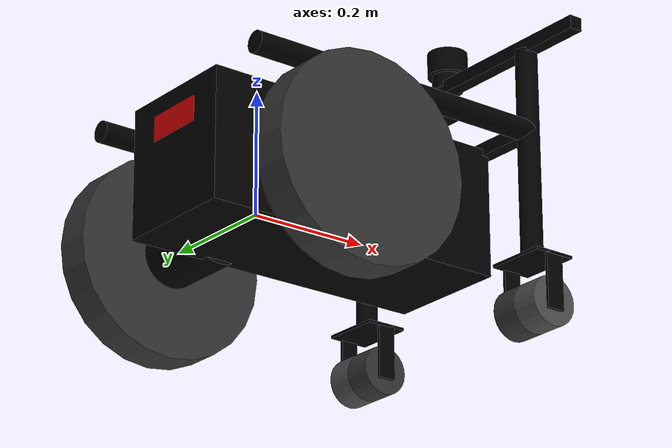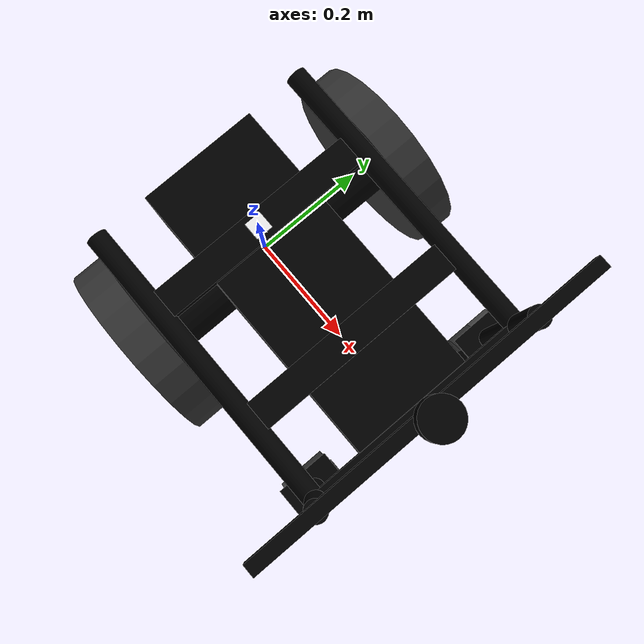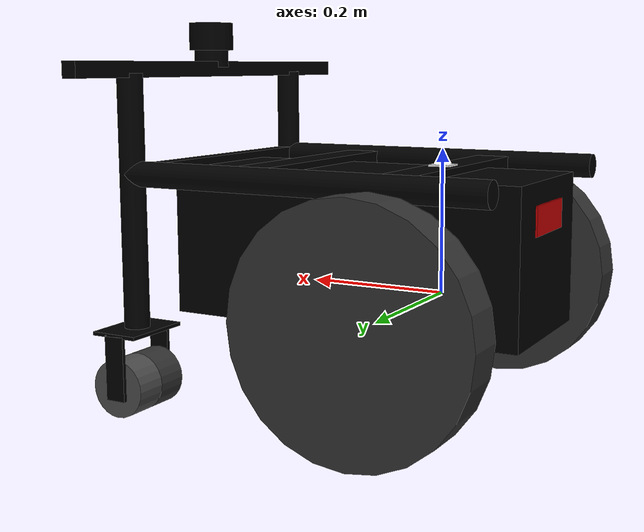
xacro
<?xml version="1.0"?>
<robot name="industrial_robot" xmlns:xacro="http://ros.org/wiki/xacro">

  <!-- Import all robot parts which were xacroed -->
  <xacro:include filename="$(find nitrabot_description)/urdf/industrial_robot.xacro" />
  <!-- Import Rviz colors -->
  <xacro:include filename="$(find nitrabot_description)/urdf/colors.xacro" />
  <!-- Import robot properties -->
  <xacro:include filename="$(find nitrabot_description)/urdf/properties.xacro" />
  <!-- Import sensor and actuator properties -->
  <xacro:include filename="$(find nitrabot_description)/urdf/sensors_and_actuators.xacro" />
  <xacro:arg name="robot_namespace" default="/" />

  <link name="base_link">
    <visual>
      <geometry>
        <box size="0.01 0.01 0.01"/>
      </geometry>
      <material name="Black"/>
    </visual>
    <collision>
      <geometry>
        <box size="1.24 0.74 0.46"/>	<!-- rough robot size: x=1.24 y=0.74 z=0.46 -->
      </geometry>
      <origin rpy="0 0 0" xyz="0.395 0.0 0.12"/>
    </collision>
  </link>
  <gazebo reference="base_link">
    <material>Gazebo/Black</material>
  </gazebo>

  <link name="base">
    <visual>
      <geometry>
        <box size="0.52 0.21 0.21"/>
      </geometry>
      <material name="Black"/>
    </visual>
    <xacro:inertial_box mass="${base_mass}" x="0.52" y="0.21" z="0.21" />
  </link>
  <gazebo reference="base">
    <material>Gazebo/Black</material>
  </gazebo>
  <joint name="base_link_to_base" type="fixed">
    <parent link="base_link"/>
    <child link="base"/>
    <origin xyz="0.11 0.0 0.061" />
  </joint>

  <link name="robot_center">
    <visual>
      <geometry>
        <box size="0.01 0.01 0.01" />
      </geometry>
      <material name="Red"/>
    </visual>
  </link>
  <gazebo reference="robot_center">
    <material>Gazebo/Red</material>
  </gazebo>
  <joint name="base_link_to_robot_center" type="fixed">
    <parent link="base_link"/>
    <child link="robot_center"/>
    <origin xyz="0.415 0.0 0.0" />
  </joint>

  <!-- ////////////////////////// Base Link and Wheel Connections and Links ////////////////////////// -->

  <xacro:default_box parent="base" child_name="back_base_support_frame" mass="${base_support_frame_mass}" sizex="0.05" sizey="0.40" sizez="0.02" ox="-0.11" oy="0.0" oz="0.105" yaw="0.0" pitch="0.0" roll="0.0" color="Black" />
  <xacro:default_box parent="base" child_name="front_base_support_frame" mass="${base_support_frame_mass}" sizex="0.05" sizey="0.40" sizez="0.02" ox="0.11" oy="0.0" oz="0.105" yaw="0.0" pitch="0.0" roll="0.0" color="Black" />

  <xacro:default_zylinder_in_X parent="back_base_support_frame" child_name="zylinder_base_support_left" mass="${zylinder_base_support_mass}" length="0.52" radius="0.0175" ox="0.11" oy="0.2" oz="0.0" yaw="0.0" pitch="${pi/2}" roll="0.0" color="Black" />
  <xacro:default_zylinder_in_X parent="back_base_support_frame" child_name="zylinder_base_support_right" mass="${zylinder_base_support_mass}" length="0.52" radius="0.0175" ox="0.11" oy="-0.2" oz="0.0" yaw="0.0" pitch="${pi/2}" roll="0.0" color="Black" />

  <xacro:default_box parent="base" child_name="support_link" mass="${support_link_mass}" sizex="0.022" sizey="0.4" sizez="0.022" ox="0.26" oy="0.0" oz="0.105" yaw="0.0" pitch="0.0" roll="0.0" color="Black" />

  <xacro:default_zylinder_in_Y parent="base" child_name="wheel_support_left" mass="${wheel_support_mass}" length="0.13" radius="0.05" ox="-0.11" oy="0.155" oz="-0.061" roll="${pi/2}" yaw="0.0" pitch="0.0" color="Black" />
  <xacro:default_zylinder_in_Y parent="base" child_name="wheel_support_right" mass="${wheel_support_mass}" length="0.13" radius="0.05" ox="-0.11" oy="-0.155" oz="-0.061" roll="${pi/2}" yaw="0.0" pitch="0.0" color="Black" />

  <xacro:default_zylinder_in_Z parent="top_support" child_name="lidar_base" mass="${lidar_base_mass}" length="0.025" radius="0.025" ox="0.01" oy="0.0" oz="0.015" roll="0.0" yaw="0.0" pitch="0.0" color="Black" />

  <xacro:default_box parent="base" child_name="back_light" mass="${back_light_mass}" sizex="0.005" sizey="0.1" sizez="0.04" ox="-0.26" oy="0.0" oz="0.055" yaw="0.0" pitch="0.0" roll="0.0" color="Red" />

  <!-- ////////////////////////// Outer frame with Links and Plates ////////////////////////// -->

  <xacro:default_box parent="base" child_name="top_support" mass="${top_support_mass}" sizex="0.022" sizey="0.63" sizez="0.022" ox="0.26" oy="0.0" oz="0.245" yaw="0.0" pitch="0.0" roll="0.0" color="Black" />

  <!-- ////////////////////////// Dust Box ////////////////////////// -->

  <!-- ////////////////////////// Brush ////////////////////////// -->

  <!-- ////////////////////////// Omnidirectional Wheels ////////////////////////// -->

  <xacro:default_zylinder_in_Z parent="zylinder_base_support_left" child_name="zylinder_to_castor_left" mass="${zylinder_to_castor_mass}" length="0.35" radius="0.0175" ox="0.26" oy="0.0" oz="-0.04" yaw="0.0" pitch="0.0" roll="0.0" color="Black" />
  <xacro:default_zylinder_in_Z parent="zylinder_base_support_right" child_name="zylinder_to_castor_right" mass="${zylinder_to_castor_mass}" length="0.35" radius="0.0175" ox="0.26" oy="0.0" oz="-0.04" yaw="0.0" pitch="0.0" roll="0.0" color="Black" />

  <xacro:default_box parent="zylinder_to_castor_left" child_name="castor_plate_left" mass="${castor_plate_mass}" sizex="0.07" sizey="0.10" sizez="0.005" ox="0.0" oy="0.0" oz="-0.175" yaw="0.0" pitch="0.0" roll="0.0" color="Black" />
  <xacro:default_box parent="zylinder_to_castor_right" child_name="castor_plate_right" mass="${castor_plate_mass}" sizex="0.07" sizey="0.10" sizez="0.005" ox="0.0" oy="0.0" oz="-0.175" yaw="0.0" pitch="0.0" roll="0.0" color="Black" />

  <xacro:default_box parent="castor_plate_left" child_name="castor_support_leftleft" mass="${castor_support_mass}" sizex="0.03" sizey="0.005" sizez="0.09" ox="0.0" oy="0.0475" oz="-0.045" yaw="0.0" pitch="0.0" roll="0.0" color="Black" />
  <xacro:default_box parent="castor_plate_left" child_name="castor_support_rightleft" mass="${castor_support_mass}" sizex="0.03" sizey="0.005" sizez="0.09" ox="0.0" oy="-0.0475" oz="-0.045" yaw="0.0" pitch="0.0" roll="0.0" color="Black" />
  <xacro:default_box parent="castor_plate_right" child_name="castor_support_leftright" mass="${castor_support_mass}" sizex="0.03" sizey="0.005" sizez="0.09" ox="0.0" oy="0.0475" oz="-0.045" yaw="0.0" pitch="0.0" roll="0.0" color="Black" />
  <xacro:default_box parent="castor_plate_right" child_name="castor_support_rightright" mass="${castor_support_mass}" sizex="0.03" sizey="0.005" sizez="0.09" ox="0.0" oy="-0.0475" oz="-0.045" yaw="0.0" pitch="0.0" roll="0.0" color="Black" />

  <xacro:default_zylinder_in_Y_with_collision parent="castor_plate_left" child_name="castor_leftleft" mass="${castor_mass}" length="0.045" radius="0.04" ox="0.0" oy="0.0225" oz="-0.075" roll="${pi/2}" yaw="0.0" pitch="0.0" color="DarkGrey" />
  <xacro:default_zylinder_in_Y_with_collision parent="castor_plate_left" child_name="castor_rightleft" mass="${castor_mass}" length="0.045" radius="0.04" ox="0.0" oy="-0.0225" oz="-0.075" roll="${pi/2}" yaw="0.0" pitch="0.0" color="Grey" />
  <xacro:default_zylinder_in_Y_with_collision parent="castor_plate_right" child_name="castor_leftright" mass="${castor_mass}" length="0.045" radius="0.04" ox="0.0" oy="0.0225" oz="-0.075" roll="${pi/2}" yaw="0.0" pitch="0.0" color="Grey" />
  <xacro:default_zylinder_in_Y_with_collision parent="castor_plate_right" child_name="castor_rightright" mass="${castor_mass}" length="0.045" radius="0.04" ox="0.0" oy="-0.0225" oz="-0.075" roll="${pi/2}" yaw="0.0" pitch="0.0" color="DarkGrey" />

  <!-- ////////////////////////// Frame for Sonic Sensors ////////////////////////// -->

  <!-- ////////////////////////// Actuators and Sensors ////////////////////////// -->

  <xacro:wheel_actuator parent="wheel_support_left" child_name="wheel_left" mass="${wheel_mass}" length="0.06" radius="${wheel_radius}" ox="0.0" oy="0.095" oz="0.0" roll="${pi/2}" yaw="0.0" pitch="0.0" color="Grey" axis_x="0" axis_y="1" axis_z="0" mu1="${mu1}" mu2="${mu2}" kp="${kp}" kd="${kd}" />
  <xacro:wheel_actuator parent="wheel_support_right" child_name="wheel_right" mass="${wheel_mass}" length="0.06" radius="${wheel_radius}" ox="0.0" oy="-0.095" oz="0.0" roll="${pi/2}" yaw="0.0" pitch="0.0" color="Grey" axis_x="0" axis_y="1" axis_z="0" mu1="${mu1}" mu2="${mu2}" kp="${kp}" kd="${kd}" />

  <xacro:lidar_sensor parent="lidar_base" lidar_name="laser" length="${lidar_length}" radius="${lidar_radius}" mass="${lidar_mass}" ox="0.0" oy="0.0" oz="0.0325" update_rate="${lidar_update_rate}" min_angle="${lidar_min_angle}" max_angle="${lidar_max_angle}" min_range="${lidar_min_range}" max_range="${lidar_max_range}" range_resolution="${lidar_range_resolution}" stdv="${lidar_stdv}" />

  <xacro:imu_sensor parent="back_base_support_frame" imu_name="imu_sensor" mass="${imu_mass}" sizex="0.03" sizey="0.03" sizez="0.005" ox="0.0" oy="0.0" oz="0.01" update_rate="${imu_update_rate}" update_rateHz="${imu_update_rateHz}" noise="${imu_noise}" />

 <gazebo>
    <plugin name="gazebo_ros_control" filename="libgazebo_ros_control.so">
      <robotNamespace>$(arg robot_namespace)</robotNamespace>
      <legacyModeNS>true</legacyModeNS>
    </plugin>
  </gazebo>

  <gazebo>
    <plugin name="imu_controller" filename="libhector_gazebo_ros_imu.so">
      <robotNamespace>$(arg robot_namespace)</robotNamespace>
      <updateRate>50.0</updateRate>
      <bodyName>base_link</bodyName>
      <topicName>imu/data</topicName>
      <accelDrift>0.005 0.005 0.005</accelDrift>
      <accelGaussianNoise>0.005 0.005 0.005</accelGaussianNoise>
      <rateDrift>0.005 0.005 0.005 </rateDrift>
      <rateGaussianNoise>0.005 0.005 0.005 </rateGaussianNoise>
      <headingDrift>0.005</headingDrift>
      <headingGaussianNoise>0.005</headingGaussianNoise>
    </plugin>
  </gazebo>

  <gazebo>
    <plugin name="gps_controller" filename="libhector_gazebo_ros_gps.so">
      <robotNamespace>$(arg robot_namespace)</robotNamespace>
      <updateRate>40</updateRate>
      <bodyName>base_link</bodyName>
      <frameId>map</frameId>
      <topicName>navsat/fix</topicName>
      <velocityTopicName>navsat/vel</velocityTopicName>
      <referenceLatitude>34.835190564394</referenceLatitude>
      <referenceLongitude>137.45711512765206</referenceLongitude>
      <referenceHeading>0</referenceHeading>
      <referenceAltitude>0</referenceAltitude>
      <drift>0.0001 0.0001 0.0001</drift>
    </plugin>
  </gazebo>

</robot>

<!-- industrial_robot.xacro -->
<robot name="industrial_robot" xmlns:xacro="http://ros.org/wiki/xacro">

  <!-- ////////////////////////////INERTIA DEFINITIONS//////////////////////////// -->
  <!-- based on the inertia list from wikipedia -->

  <xacro:macro name="inertial_zylinder_x" params="mass radius height">
    <inertial>
      <mass value="${mass}" />
      <inertia ixx="${(mass/2)*radius*radius}" ixy="0.0" ixz="0.0" iyy="${(mass/12)*(3*radius*radius+height*height)}" iyz="0.0" izz="${(mass/12)*(3*radius*radius+height*height)}" />
    </inertial>
  </xacro:macro>

  <xacro:macro name="inertial_zylinder_y" params="mass radius height">
    <inertial>
      <mass value="${mass}" />
      <inertia ixx="${(mass/12)*(3*radius*radius+height*height)}" ixy="0.0" ixz="0.0" iyy="${(mass/2)*radius*radius}" iyz="0.0" izz="${(mass/12)*(3*radius*radius+height*height)}" />
    </inertial>
  </xacro:macro>

  <xacro:macro name="inertial_zylinder_z" params="mass radius height">
    <inertial>
      <mass value="${mass}" />
      <inertia ixx="${(mass/12)*(3*radius*radius+height*height)}" ixy="0.0" ixz="0.0" iyy="${(mass/12)*(3*radius*radius+height*height)}" iyz="0.0" izz="${(mass/2)*radius*radius}" />
    </inertial>
  </xacro:macro>

  <xacro:macro name="inertial_box" params="mass x y z">
    <inertial>
      <mass value="${mass}" />
      <inertia ixx="${(mass/12)*(y*y+z*z)}" ixy="0.0" ixz="0.0" iyy="${(mass/12)*(x*x+z*z)}" iyz="0.0" izz="${(mass/12)*(y*y+x*x)}" />
    </inertial>
  </xacro:macro>

  <!-- //////////////////////////// Robot xacros //////////////////////////// -->

  <xacro:macro name="default_box" params="parent child_name mass sizex sizey sizez ox oy oz roll pitch yaw color">
    <link name="${child_name}" >
      <visual>
        <geometry>
          <box size="${sizex} ${sizey} ${sizez}" />
        </geometry>
        <origin rpy="${roll} ${pitch} ${yaw}" />
        <material name="${color}" />
      </visual>
      <xacro:inertial_box mass="${mass}" x="${sizex}" y="${sizey}" z="${sizez}" />
    </link>
    <gazebo reference="${child_name}" >
      <material>Gazebo/${color}</material>
    </gazebo>
    <joint name="${parent}_to_${child_name}" type="fixed">
      <parent link="${parent}" />
      <child link="${child_name}" />
      <origin xyz="${ox} ${oy} ${oz}" />
    </joint>
  </xacro:macro>

  <xacro:macro name="default_zylinder_in_X" params="parent child_name mass length radius ox oy oz roll pitch yaw color">
    <link name="${child_name}" >
      <visual>
        <geometry>
          <cylinder length="${length}" radius="${radius}" />
        </geometry>
        <origin rpy="${roll} ${pitch} ${yaw}" />
        <material name="${color}" />
      </visual>
      <xacro:inertial_zylinder_x mass="${mass}" radius="${radius}" height="${length}" />
    </link>
    <gazebo reference="${child_name}" >
      <material>Gazebo/${color}</material>
    </gazebo>
    <joint name="${parent}_to_${child_name}" type="fixed">
      <parent link="${parent}" />
      <child link="${child_name}" />
      <origin xyz="${ox} ${oy} ${oz}" />
    </joint>
  </xacro:macro>

  <xacro:macro name="default_zylinder_in_Y" params="parent child_name mass length radius ox oy oz roll pitch yaw color">
    <link name="${child_name}" >
      <visual>
        <geometry>
          <cylinder length="${length}" radius="${radius}" />
        </geometry>
        <origin rpy="${roll} ${pitch} ${yaw}" />
        <material name="${color}" />
      </visual>
      <xacro:inertial_zylinder_y mass="${mass}" radius="${radius}" height="${length}" />
    </link>
    <gazebo reference="${child_name}" >
      <material>Gazebo/${color}</material>
    </gazebo>
    <joint name="${parent}_to_${child_name}" type="fixed">
      <parent link="${parent}" />
      <child link="${child_name}" />
      <origin xyz="${ox} ${oy} ${oz}" />
    </joint>
  </xacro:macro>

  <xacro:macro name="default_zylinder_in_Z" params="parent child_name mass length radius ox oy oz roll pitch yaw color">
    <link name="${child_name}" >
      <visual>
        <geometry>
          <cylinder length="${length}" radius="${radius}" />
        </geometry>
        <origin rpy="${roll} ${pitch} ${yaw}" />
        <material name="${color}" />
      </visual>
      <xacro:inertial_zylinder_z mass="${mass}" radius="${radius}" height="${length}" />
    </link>
    <gazebo reference="${child_name}" >
      <material>Gazebo/${color}</material>
    </gazebo>
    <joint name="${parent}_to_${child_name}" type="fixed">
      <parent link="${parent}" />
      <child link="${child_name}" />
      <origin xyz="${ox} ${oy} ${oz}" />
    </joint>
  </xacro:macro>

  <!-- //////////////////////////// Robot xacros with collision //////////////////////////// -->

  <xacro:macro name="default_box_with_collision" params="parent child_name mass sizex sizey sizez ox oy oz roll pitch yaw color">
    <link name="${child_name}" >
      <visual>
        <geometry>
          <box size="${sizex} ${sizey} ${sizez}" />
        </geometry>
        <origin rpy="${roll} ${pitch} ${yaw}" />
        <material name="${color}" />
      </visual>
      <collision>
        <geometry>
          <box size="${sizex} ${sizey} ${sizez}" />
        </geometry>
        <origin rpy="${roll} ${pitch} ${yaw}" />
      </collision>
      <xacro:inertial_box mass="${mass}" x="${sizex}" y="${sizey}" z="${sizez}" />
    </link>
    <gazebo reference="${child_name}" >
      <material>Gazebo/${color}</material>
    </gazebo>
    <joint name="${parent}_to_${child_name}" type="fixed">
      <parent link="${parent}" />
      <child link="${child_name}" />
      <origin xyz="${ox} ${oy} ${oz}" />
    </joint>
  </xacro:macro>

  <xacro:macro name="default_zylinder_in_X_with_collision" params="parent child_name mass length radius ox oy oz roll pitch yaw color">
    <link name="${child_name}" >
      <visual>
        <geometry>
          <cylinder length="${length}" radius="${radius}" />
        </geometry>
        <origin rpy="${roll} ${pitch} ${yaw}" />
        <material name="${color}" />
      </visual>
      <collision>
        <geometry>
          <cylinder length="${length}" radius="${radius}" />
        </geometry>
        <origin rpy="${roll} ${pitch} ${yaw}" />
      </collision>
      <xacro:inertial_zylinder_x mass="${mass}" radius="${radius}" height="${length}" />
    </link>
    <gazebo reference="${child_name}" >
      <material>Gazebo/${color}</material>
    </gazebo>
    <joint name="${parent}_to_${child_name}" type="fixed">
      <parent link="${parent}" />
      <child link="${child_name}" />
      <origin xyz="${ox} ${oy} ${oz}" />
    </joint>
  </xacro:macro>

  <xacro:macro name="default_zylinder_in_Y_with_collision" params="parent child_name mass length radius ox oy oz roll pitch yaw color">
    <link name="${child_name}" >
      <visual>
        <geometry>
          <cylinder length="${length}" radius="${radius}" />
        </geometry>
        <origin rpy="${roll} ${pitch} ${yaw}" />
        <material name="${color}" />
      </visual>
      <collision>
        <geometry>
          <cylinder length="${length}" radius="${radius}" />
        </geometry>
        <origin rpy="${roll} ${pitch} ${yaw}" />
      </collision>
      <xacro:inertial_zylinder_y mass="${mass}" radius="${radius}" height="${length}" />
    </link>
    <gazebo reference="${child_name}" >
      <material>Gazebo/${color}</material>
    </gazebo>
    <joint name="${parent}_to_${child_name}" type="fixed">
      <parent link="${parent}" />
      <child link="${child_name}" />
      <origin xyz="${ox} ${oy} ${oz}" />
    </joint>
  </xacro:macro>

  <xacro:macro name="default_zylinder_in_Z_with_collision" params="parent child_name mass length radius ox oy oz roll pitch yaw color">
    <link name="${child_name}" >
      <visual>
        <geometry>
          <cylinder length="${length}" radius="${radius}" />
        </geometry>
        <origin rpy="${roll} ${pitch} ${yaw}" />
        <material name="${color}" />
      </visual>
      <collision>
        <geometry>
          <cylinder length="${length}" radius="${radius}" />
        </geometry>
        <origin rpy="${roll} ${pitch} ${yaw}" />
      </collision>
      <xacro:inertial_zylinder_z mass="${mass}" radius="${radius}" height="${length}" />
    </link>
    <gazebo reference="${child_name}" >
      <material>Gazebo/${color}</material>
    </gazebo>
    <joint name="${parent}_to_${child_name}" type="fixed">
      <parent link="${parent}" />
      <child link="${child_name}" />
      <origin xyz="${ox} ${oy} ${oz}" />
    </joint>
  </xacro:macro>

</robot>

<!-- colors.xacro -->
<robot name="industrial_robot" xmlns:xacro="http://ros.org/wiki/xacro">

  <material name="Black">
    <color rgba="0.0 0.0 0.0 1.0"/>
  </material>

  <material name="Blue">
    <color rgba="0.0 0.0 0.8 1.0"/>
  </material>

  <material name="Green">
    <color rgba="0.0 0.8 0.0 1.0"/>
  </material>

  <material name="Yellow">
    <color rgba="1 1 0 1"/>
  </material>

  <material name="Grey">
    <color rgba="0.2 0.2 0.2 1.0"/>
  </material>

  <material name="WhiteGlow">
	<color rgba="0.75 0.75 0.75 1"/>
  </material>

  <material name="Darkgrey">
	<color rgba="0.41 0.41 0.41 1"/>
  </material>

  <material name="Orange">
    <color rgba="${255/255} ${108/255} ${10/255} 1.0"/>
  </material>

  <material name="Brown">
    <color rgba="${222/255} ${207/255} ${195/255} 1.0"/>
  </material>

  <material name="Red">
    <color rgba="0.8 0.0 0.0 1.0"/>
  </material>

  <material name="White">
    <color rgba="1.0 1.0 1.0 1.0"/>
  </material>

</robot>

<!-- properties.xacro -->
<robot name="industrial_robot" xmlns:xacro="http://ros.org/wiki/xacro">

  <xacro:property name="pi" value="3.14159" />

  <!-- /////////////////// size of robot parts /////////////////// -->
  <xacro:property name="wheel_radius" value="0.164" />
  <xacro:property name="wheel_seperation" value="0.53" />

  <!-- /////////////////// mass of robot parts /////////////////// -->
  <xacro:property name="base_mass" value="30.0" />                  <!-- updated -->
  <xacro:property name="base_support_frame_mass" value="0.415" />   <!-- updated -->
  <xacro:property name="zylinder_base_support_mass" value="1.08" /> <!-- updated -->
  <xacro:property name="support_link_mass" value="0.415" />         <!-- updated -->
  <xacro:property name="wheel_support_mass" value="11.5" />         <!-- updated -->
  <xacro:property name="wheel_mass" value="4.0" />                  <!-- updated -->

  <xacro:property name="lidar_base_mass" value="0.2" />             <!-- updated -->
  <xacro:property name="front_light_mass" value="0.05" />           <!-- updated -->
  <xacro:property name="back_light_mass" value="0.1" />             <!-- updated -->

  <xacro:property name="zylinder_to_castor_mass" value="0.725" />   <!-- updated -->
  <xacro:property name="castor_plate_mass" value="0.12" />          <!-- updated -->
  <xacro:property name="castor_support_mass" value="0.1" />         <!-- updated -->
  <xacro:property name="castor_mass" value="0.3" />                 <!-- updated -->

  <xacro:property name="top_support_mass" value="0.65" />           <!-- updated -->
  <xacro:property name="top_frame_yellow_mass" value="1.5" />       <!-- updated -->
  <xacro:property name="top_frame_black_mass" value="1.8" />        <!-- updated -->
  <xacro:property name="front_frame_black_mass" value="2.0" />      <!-- updated -->

  <xacro:property name="long_zylinder_mass" value="1.17" />         <!-- updated -->
  <xacro:property name="short_zylinder_mass" value="0.415" />       <!-- updated -->

  <!-- /////////////////// sensor specifications /////////////////// -->
  <xacro:property name="dist_size" value="0.03" />
  <xacro:property name="dist_sensor_update_rate" value="40.0" />	<!-- update rate in ms or in Hz??? -->
  <xacro:property name="dist_sensor_min_range" value="0.10" />
  <xacro:property name="dist_sensor_max_range" value="3.00" />
  <xacro:property name="dist_sensor_noise" value="0.01" />

  <xacro:property name="lidar_update_rate" value="10.0" />			<!-- update rate in ms or in Hz??? -->
  <xacro:property name="lidar_mass" value="0.3" />
  <xacro:property name="lidar_length" value="0.04" />
  <xacro:property name="lidar_radius" value="0.0325" />
  <xacro:property name="lidar_min_range" value="0.15" />
  <xacro:property name="lidar_max_range" value="8.0" />
  <xacro:property name="lidar_stdv" value="0.01" />
  <xacro:property name="lidar_range_resolution" value="0.01" />
  <xacro:property name="lidar_min_angle" value="0.0" />
  <xacro:property name="lidar_max_angle" value="6.283185" />

  <xacro:property name="imu_update_rate" value="25.0" />			<!-- update rate in ms -->
  <xacro:property name="imu_update_rateHz" value="40.0" />
  <xacro:property name="imu_mass" value="0.05" />
  <xacro:property name="imu_noise" value="0.001" />

  <xacro:property name="mu1" value="0.6" />
  <xacro:property name="mu2" value="0.6" />
  <xacro:property name="kp" value="10000000.0" />
  <xacro:property name="kd" value="40.0" />

</robot>

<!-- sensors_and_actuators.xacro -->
<robot name="industrial_robot" xmlns:xacro="http://ros.org/wiki/xacro">

  <!-- ////////////////////////////DISTANCE SENSOR XACROS//////////////////////////// -->

  <xacro:macro name="distance_sensor_sonar" params="prefix sufix parent mass sizex sizey sizez ox oy oz roll pitch yaw vert_view hor_view update_rate min_range max_range noise">
    <link name="${prefix}_${sufix}">
	  <visual>
	    <geometry>
	  <box size="${sizex} ${sizey} ${sizez}"/>
	        </geometry>
		<material name="White" />
	  </visual>
	  <xacro:inertial_box mass="${mass}" x="${sizex}" y="${sizey}" z="${sizez}" />
	</link>

        <joint name="${parent}_to_${prefix}_${sufix}" type="fixed">
	  <parent link="${parent}"/>
	  <child link="${prefix}_${sufix}"/>
	  <origin xyz="${ox} ${oy} ${oz}" rpy="${roll} ${pitch} ${yaw}"/>
	</joint>

        <gazebo reference="${prefix}_${sufix}">
	  <material>Gazebo/White</material>
	  <sensor type="ray" name="${prefix}_${sufix}">
	    <always_on>true</always_on>
	        <pose>0 0 0 0 0 0</pose>
		<visualize>false</visualize>
		<update_rate>${update_rate}</update_rate>
		<ray>
		  <scan>
		    <horizontal>
			  <samples>5</samples>
			  <resolution>1</resolution>
			  <min_angle>${hor_view-0.01}</min_angle>
			  <max_angle>${hor_view+0.01}</max_angle>
			</horizontal>
		    <vertical>
			  <samples>5</samples>
			  <resolution>1</resolution>
			  <min_angle>${vert_view-0.01}</min_angle>
			  <max_angle>${vert_view+0.01}</max_angle>
			</vertical>
		  </scan>
		  <range>
		    <min>${min_range}</min>
			<max>${max_range}</max>
	        <resolution>0.01</resolution>
		  </range>
		</ray>
		<plugin name="gazebo_ros_${prefix}_${sufix}_controller" filename="libhector_gazebo_ros_sonar.so">
		  <gaussianNoise>${noise}</gaussianNoise>
		  <topicName>/${prefix}_${sufix}/sonar</topicName>
		  <frameId>${prefix}_${sufix}</frameId>
		</plugin>
	  </sensor>
    </gazebo>
  </xacro:macro>

  <xacro:macro name="distance_sensor_laser" params="prefix sufix parent mass ox oy oz hor_view update_rate min_range max_range noise">
    <link name="${prefix}_distance_sensor_link_${sufix}">
	  <visual>
	    <geometry>
    	  <box size="${dist_size} ${dist_size} ${dist_size}"/>
		</geometry>
		<material name="White" />
	  </visual>
	  <xacro:inertial_box mass="${mass}" x="${dist_size}" y="${dist_size}" z="${dist_size}" />
	</link>

	<gazebo reference="${prefix}_distance_sensor_link_${sufix}">
      <material>Gazebo/White</material>
	</gazebo>

	<joint name="${parent}_to_${prefix}_distance_sensor_link_${sufix}" type="fixed">
	  <parent link="${parent}"/>
	  <child link="${prefix}_distance_sensor_link_${sufix}"/>
	  <origin xyz="${ox} ${oy} ${oz}"/>
	</joint>

	<gazebo reference="${prefix}_distance_sensor_link_${sufix}">
	  <sensor type="ray" name="${prefix}_distance_sensor_${sufix}">
	    <always_on>true</always_on>
		<pose>0 0 0 0 0 0</pose>
		<visualize>false</visualize>
		<update_rate>${update_rate}</update_rate>
		<ray>
		  <scan>
		    <horizontal>
			  <samples>3</samples>
			  <resolution>1</resolution>
			  <min_angle>${hor_view-0.01}</min_angle>
			  <max_angle>${hor_view}+0.01</max_angle>
			</horizontal>
		  </scan>
		  <range>
		    <min>${min_range}</min>
			<max>${max_range}</max>
	        <resolution>0.01</resolution>
		  </range>
		  <noise>
		    <type>gaussian</type>
			<mean>0.0</mean>
			<stddev>${noise}</stddev>
		  </noise>
		</ray>
		<plugin name="gazebo_ros_${parent}_to_${prefix}_distance_sensor_${sufix}_controller" filename="libgazebo_ros_laser.so">
		  <topicName>/${prefix}_distance_sensor_${sufix}/scan</topicName>
		  <frameName>${prefix}_distance_sensor_link_${sufix}</frameName>
		</plugin>
	  </sensor>
    </gazebo>
  </xacro:macro>

<!-- ///////////////////////// Wheel Actuators ///////////////////////// -->

  <xacro:macro name="wheel_actuator" params="parent child_name mass length radius ox oy oz roll pitch yaw color axis_x axis_y axis_z mu1 mu2 kp kd">
      <link name="${child_name}" >
      <visual>
        <geometry>
	  <cylinder length="${length}" radius="${radius}" />
        </geometry>
        <origin rpy="${roll} ${pitch} ${yaw}" />
        <material name="${color}" />
      </visual>
      <collision>
        <geometry>
	  <cylinder length="${length}" radius="${radius}" />
        </geometry>
        <origin rpy="${roll} ${pitch} ${yaw}" />
      </collision>
      <xacro:inertial_zylinder_y mass="${mass}" radius="${radius}" height="${length}" />
    </link>
    <gazebo reference="${child_name}" >
      <mu1 value="${mu1}"/>
      <mu2 value="${mu2}"/>
      <kp value="${kp}" />
      <kd value="${kd}" />
      <material>Gazebo/${color}</material>
    </gazebo>
    <joint name="${parent}_to_${child_name}" type="continuous">
      <parent link="${parent}" />
      <child link="${child_name}" />
      <axis xyz="${axis_x} ${axis_y} ${axis_z}" />
      <origin xyz="${ox} ${oy} ${oz}" />
    </joint>
    <transmission name="${child_name}_trans">
      <type>transmission_interface/SimpleTransmission</type>
      <actuator name="${child_name}_motor">
        <hardwareInterface>hardware_interface/EffortJointInterface</hardwareInterface>
        <mechanicalReduction>1</mechanicalReduction>
      </actuator>
      <joint name="${parent}_to_${child_name}">
        <hardwareInterface>hardware_interface/VelocityJointInterface</hardwareInterface>
      </joint>
    </transmission>

  </xacro:macro>

<!-- ////////////////////////////// Lidar ////////////////////////////// -->

  <xacro:macro name="lidar_sensor" params="parent lidar_name length radius mass ox oy oz update_rate min_angle max_angle min_range max_range range_resolution stdv" >
    <link name="${lidar_name}">
	  <visual>
	    <geometry>
		  <cylinder length="${length}" radius="${radius}"/>
		</geometry>
		<origin rpy="0 0 0" xyz="0 0 0"/>
		<material name="Black"/>
	  </visual>
	  <xacro:inertial_zylinder_z mass="${mass}" radius="${radius}" height="${length}" />
	</link>
	<gazebo reference="${lidar_name}">
      <material>Gazebo/Black</material>
  	</gazebo>
	<joint name="$[parent}_to_${lidar_name}" type="fixed">
	  <parent link="${parent}"/>
      <child link="${lidar_name}"/>
	  <origin xyz="${ox} ${oy} ${oz}"/>
	</joint>

	<!-- RPLidar -->
  	<gazebo reference="${lidar_name}">
      <sensor type="ray" name="head_hokuyo_sensor">
        <pose>0 0 0 0 0 0</pose>
	<visualize>false</visualize>
      	<update_rate>${update_rate}</update_rate>
      	<ray>
          <scan>
            <horizontal>
	      <samples>400</samples>
              <resolution>1</resolution>
              <min_angle>${min_angle}</min_angle>
              <max_angle>${max_angle}</max_angle>
          	</horizontal>
          </scan>
          <range>
            <min>${min_range}</min>
            <max>${max_range}</max>
          	<resolution>${range_resolution}</resolution>
          </range>
          <noise>
            <type>gaussian</type>
          	<mean>0.0</mean>
          	<stddev>${stdv}</stddev>
          </noise>
      	</ray>
      	<plugin name="gazebo_ros_head_hokuyo_controller" filename="libgazebo_ros_laser.so">
          <topicName>/scan</topicName>
          <frameName>laser</frameName>
      	</plugin>
      </sensor>
    </gazebo>
  </xacro:macro>

<!-- ////////////////////////////// IMU ////////////////////////////// -->

  <xacro:macro name="imu_sensor" params="parent imu_name mass sizex sizey sizez ox oy oz update_rate update_rateHz noise" >
    <link name="${imu_name}">
	  <visual>
	    <geometry>
	      <box size="${sizex} ${sizey} ${sizez}"/>
		</geometry>
	    <material name="White"/>
	  </visual>
	  <xacro:inertial_box mass="${mass}" x="${sizex}" y="${sizey}" z="${sizez}" />
    </link>
	<joint name="${parent}_to_${imu_name}" type="fixed">
	  <parent link="${parent}"/>
	  <child link="${imu_name}"/>
	  <origin xyz="${ox} ${oy} ${oz}"/>
	</joint>
        <!-- maybe switch to the Hector version of the IMU -->
    <gazebo reference="${imu_name}">
      <material>Gazebo/White</material>
	  <gravity>true</gravity>
	  <sensor name="${imu_name}_sensor" type="imu">
	    <always_on>true</always_on>
	    <update_rate>${update_rate}</update_rate>
	    <visualize>true</visualize>
	    <topic>__default_topic__</topic>
  		<plugin filename="libgazebo_ros_imu_sensor.so" name="imu_plugin">
		  <topicName>imu</topicName>
                  <bodyName>${imu_name}</bodyName>
		  <updateRateHZ>${update_rateHz}</updateRateHZ>
                  <gaussianNoise>${noise}</gaussianNoise>
		  <xyzOffset>0 0 0</xyzOffset>
		  <rpyOffset>0 0 0</rpyOffset>
                  <frameName>${imu_name}</frameName>
	    </plugin>
	    <pose>0 0 0 0 0 0</pose>
	  </sensor>
    </gazebo>
  </xacro:macro>

</robot>
